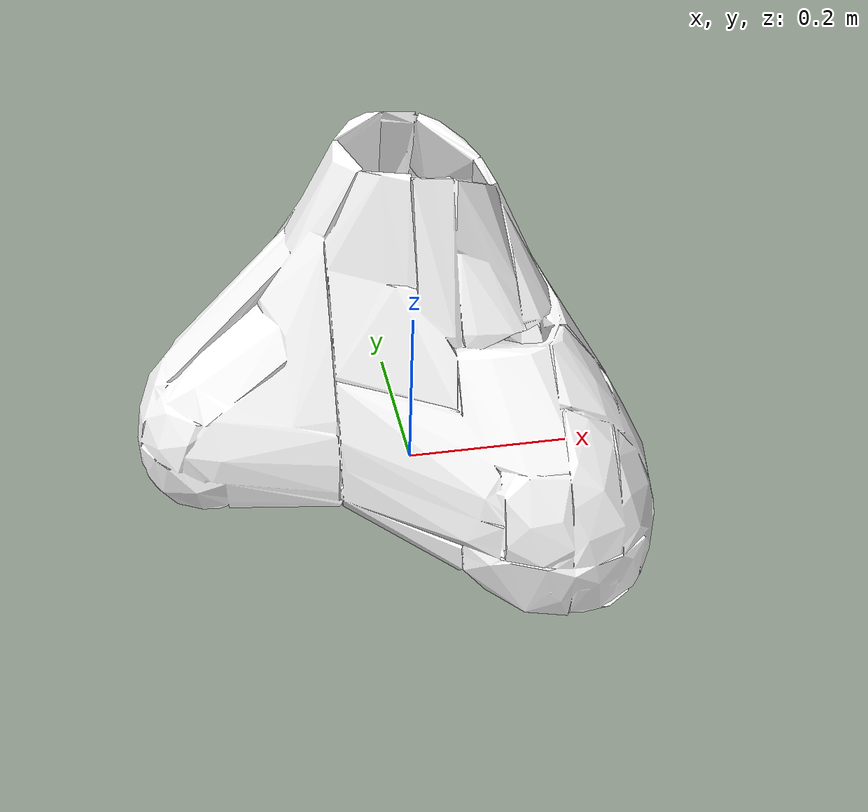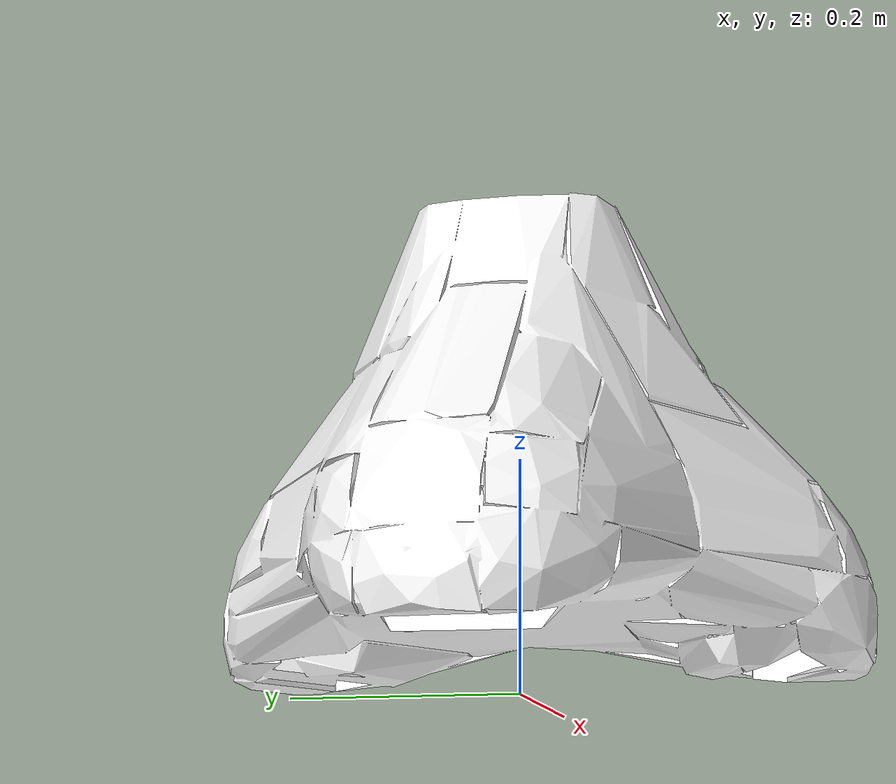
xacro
<?xml version="1.0" encoding="utf-8"?>
<robot xmlns:xacro="http://www.ros.org/wiki/xacro">
	<link name="base_footprint">
		<visual>
			<origin xyz="0 0 0" rpy="0 0 0" />
			<geometry>
				<mesh filename="package://ginger_description/meshes/visual/base_footprint.STL" />
			</geometry>
			<material name="">
				<color rgba="1 1 1 1" />
			</material>
		</visual>
		<collision>
			<origin xyz="0 0 0" rpy="0 0 0" />
			<geometry>
				<mesh filename="package://ginger_description/meshes/collision/base_footprint.STL" />
			</geometry>
		</collision>
	</link>
	<link name="base_link">
		<inertial>
			<origin xyz="-0.00055154 0.00095133 0.1361" rpy="0 0 0" />
			<mass value="30.009" />
			<inertia ixx="0.041932" ixy="8.313E-05" ixz="-0.00017454" iyy="0.024745" iyz="-5.7341E-05" izz="0.059952" />
		</inertial>
		<visual>
			<origin xyz="0 0 0" rpy="0 0 0" />
			<geometry>
				<mesh filename="package://ginger_description/meshes/visual/base_link.STL" />
			</geometry>
			<material name="">
				<color rgba="1 1 1 1" />
			</material>
		</visual>
		<collision>
			<origin xyz="0 0 0" rpy="0 0 0" />
			<geometry>
				<mesh filename="package://ginger_description/meshes/collision/base_link.STL" />
			</geometry>
		</collision>
	</link>
	<joint name="base_link_fixedjoint" type="fixed">
		<origin xyz="0 0 0.059449" rpy="0 0 0" />
		<parent link="base_footprint" />
		<child link="base_link" />
		<axis xyz="0 0 0" />
	</joint>
</robot>
